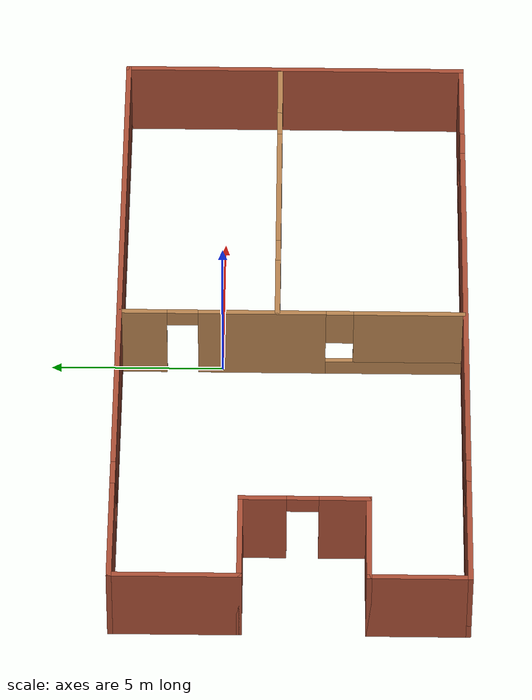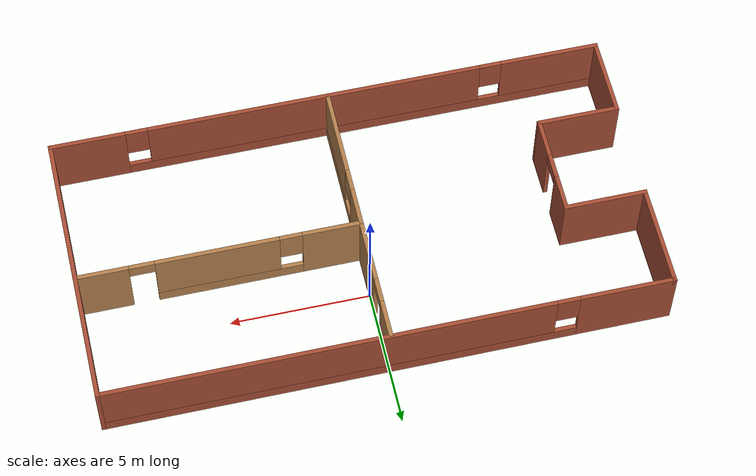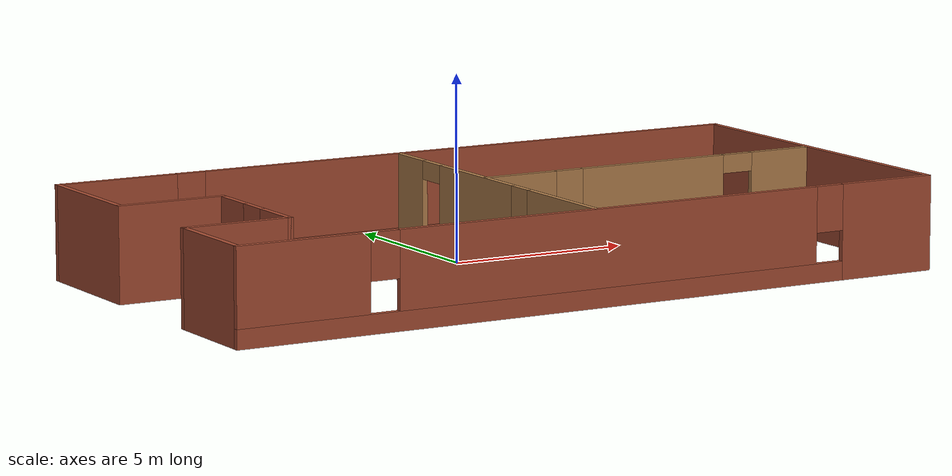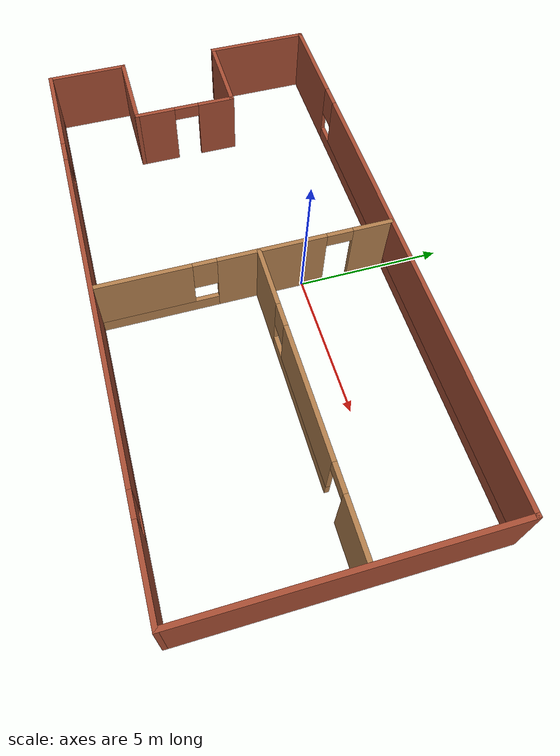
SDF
<?xml version='1.0'?>
<sdf version='1.6'>
  <model name='Building'>
    <pose frame=''>0 -2 0 0 -0 0</pose>
    <link name='Wall_40'>
      <pose frame=''>-0 5 0 0 -0 0</pose>
      <visual name='Wall_40_Visual_0'>
        <pose frame=''>-8.36862 0 1.25 0 -0 0</pose>
        <geometry>
          <box>
            <size>3.41276 0.15 2.5</size>
          </box>
        </geometry>
        <material>
          <script>
            <uri>file://media/materials/scripts/gazebo.material</uri>
            <name>Gazebo/Bricks</name>
          </script>
          <ambient>1 1 1 1</ambient>
        </material>
        <meta>
          <layer>0</layer>
        </meta>
      </visual>
      <collision name='Wall_40_Collision_0'>
        <geometry>
          <box>
            <size>3.41276 0.15 2.5</size>
          </box>
        </geometry>
        <pose frame=''>-8.36862 0 1.25 0 -0 0</pose>
      </collision>
      <visual name='Wall_40_Visual_1'>
        <pose frame=''>1.70638 0 0.25 0 -0 0</pose>
        <geometry>
          <box>
            <size>16.7372 0.15 0.5</size>
          </box>
        </geometry>
        <material>
          <script>
            <uri>file://media/materials/scripts/gazebo.material</uri>
            <name>Gazebo/Bricks</name>
          </script>
          <ambient>1 1 1 1</ambient>
        </material>
        <meta>
          <layer>0</layer>
        </meta>
      </visual>
      <collision name='Wall_40_Collision_1'>
        <geometry>
          <box>
            <size>16.7372 0.15 0.5</size>
          </box>
        </geometry>
        <pose frame=''>1.70638 0 0.25 0 -0 0</pose>
      </collision>
      <visual name='Wall_40_Visual_2'>
        <pose frame=''>2.10638 0 1.5 0 -0 0</pose>
        <geometry>
          <box>
            <size>15.9372 0.15 2</size>
          </box>
        </geometry>
        <material>
          <script>
            <uri>file://media/materials/scripts/gazebo.material</uri>
            <name>Gazebo/Bricks</name>
          </script>
          <ambient>1 1 1 1</ambient>
        </material>
        <meta>
          <layer>0</layer>
        </meta>
      </visual>
      <collision name='Wall_40_Collision_2'>
        <geometry>
          <box>
            <size>15.9372 0.15 2</size>
          </box>
        </geometry>
        <pose frame=''>2.10638 0 1.5 0 -0 0</pose>
      </collision>
      <visual name='Wall_40_Visual_3'>
        <pose frame=''>-6.26225 0 1.9 0 -0 0</pose>
        <geometry>
          <box>
            <size>0.8 0.15 1.2</size>
          </box>
        </geometry>
        <material>
          <script>
            <uri>file://media/materials/scripts/gazebo.material</uri>
            <name>Gazebo/Bricks</name>
          </script>
          <ambient>1 1 1 1</ambient>
        </material>
        <meta>
          <layer>0</layer>
        </meta>
      </visual>
      <collision name='Wall_40_Collision_3'>
        <geometry>
          <box>
            <size>0.8 0.15 1.2</size>
          </box>
        </geometry>
        <pose frame=''>-6.26225 0 1.9 0 -0 0</pose>
      </collision>
    </link>
    <link name='Wall_42'>
      <pose frame=''>-0 -5 0 0 -0 3.14159</pose>
      <visual name='Wall_42_Visual_0'>
        <pose frame=''>-8.69391 0 1.25 0 -0 0</pose>
        <geometry>
          <box>
            <size>2.76218 0.15 2.5</size>
          </box>
        </geometry>
        <material>
          <script>
            <uri>file://media/materials/scripts/gazebo.material</uri>
            <name>Gazebo/Bricks</name>
          </script>
          <ambient>1 1 1 1</ambient>
        </material>
        <meta>
          <layer>0</layer>
        </meta>
      </visual>
      <collision name='Wall_42_Collision_0'>
        <geometry>
          <box>
            <size>2.76218 0.15 2.5</size>
          </box>
        </geometry>
        <pose frame=''>-8.69391 0 1.25 0 -0 0</pose>
      </collision>
      <visual name='Wall_42_Visual_1'>
        <pose frame=''>1.38109 0 0.25 0 -0 0</pose>
        <geometry>
          <box>
            <size>17.3878 0.15 0.5</size>
          </box>
        </geometry>
        <material>
          <script>
            <uri>file://media/materials/scripts/gazebo.material</uri>
            <name>Gazebo/Bricks</name>
          </script>
          <ambient>1 1 1 1</ambient>
        </material>
        <meta>
          <layer>0</layer>
        </meta>
      </visual>
      <collision name='Wall_42_Collision_1'>
        <geometry>
          <box>
            <size>17.3878 0.15 0.5</size>
          </box>
        </geometry>
        <pose frame=''>1.38109 0 0.25 0 -0 0</pose>
      </collision>
      <visual name='Wall_42_Visual_2'>
        <pose frame=''>-0.427577 0 1.5 0 -0 0</pose>
        <geometry>
          <box>
            <size>12.1705 0.15 2</size>
          </box>
        </geometry>
        <material>
          <script>
            <uri>file://media/materials/scripts/gazebo.material</uri>
            <name>Gazebo/Bricks</name>
          </script>
          <ambient>1 1 1 1</ambient>
        </material>
        <meta>
          <layer>0</layer>
        </meta>
      </visual>
      <collision name='Wall_42_Collision_2'>
        <geometry>
          <box>
            <size>12.1705 0.15 2</size>
          </box>
        </geometry>
        <pose frame=''>-0.427577 0 1.5 0 -0 0</pose>
      </collision>
      <visual name='Wall_42_Visual_3'>
        <pose frame=''>8.26633 0 1.5 0 -0 0</pose>
        <geometry>
          <box>
            <size>3.61734 0.15 2</size>
          </box>
        </geometry>
        <material>
          <script>
            <uri>file://media/materials/scripts/gazebo.material</uri>
            <name>Gazebo/Bricks</name>
          </script>
          <ambient>1 1 1 1</ambient>
        </material>
        <meta>
          <layer>0</layer>
        </meta>
      </visual>
      <collision name='Wall_42_Collision_3'>
        <geometry>
          <box>
            <size>3.61734 0.15 2</size>
          </box>
        </geometry>
        <pose frame=''>8.26633 0 1.5 0 -0 0</pose>
      </collision>
      <visual name='Wall_42_Visual_4'>
        <pose frame=''>-6.91282 0 1.9 0 -0 0</pose>
        <geometry>
          <box>
            <size>0.8 0.15 1.2</size>
          </box>
        </geometry>
        <material>
          <script>
            <uri>file://media/materials/scripts/gazebo.material</uri>
            <name>Gazebo/Bricks</name>
          </script>
          <ambient>1 1 1 1</ambient>
        </material>
        <meta>
          <layer>0</layer>
        </meta>
      </visual>
      <collision name='Wall_42_Collision_4'>
        <geometry>
          <box>
            <size>0.8 0.15 1.2</size>
          </box>
        </geometry>
        <pose frame=''>-6.91282 0 1.9 0 -0 0</pose>
      </collision>
      <visual name='Wall_42_Visual_5'>
        <pose frame=''>6.05766 0 1.9 0 -0 0</pose>
        <geometry>
          <box>
            <size>0.8 0.15 1.2</size>
          </box>
        </geometry>
        <material>
          <script>
            <uri>file://media/materials/scripts/gazebo.material</uri>
            <name>Gazebo/Bricks</name>
          </script>
          <ambient>1 1 1 1</ambient>
        </material>
        <meta>
          <layer>0</layer>
        </meta>
      </visual>
      <collision name='Wall_42_Collision_5'>
        <geometry>
          <box>
            <size>0.8 0.15 1.2</size>
          </box>
        </geometry>
        <pose frame=''>6.05766 0 1.9 0 -0 0</pose>
      </collision>
    </link>
    <link name='Wall_44'>
      <collision name='Wall_44_Collision'>
        <geometry>
          <box>
            <size>10.15 0.15 2.5</size>
          </box>
        </geometry>
        <pose frame=''>0 0 1.25 0 -0 0</pose>
      </collision>
      <visual name='Wall_44_Visual'>
        <pose frame=''>0 0 1.25 0 -0 0</pose>
        <geometry>
          <box>
            <size>10.15 0.15 2.5</size>
          </box>
        </geometry>
        <material>
          <script>
            <uri>file://media/materials/scripts/gazebo.material</uri>
            <name>Gazebo/Bricks</name>
          </script>
          <ambient>1 1 1 1</ambient>
        </material>
        <meta>
          <layer>0</layer>
        </meta>
      </visual>
      <pose frame=''>10 0 0 0 -0 -1.5708</pose>
    </link>
    <link name='Wall_46'>
      <collision name='Wall_46_Collision'>
        <geometry>
          <box>
            <size>3.75 0.15 2.5</size>
          </box>
        </geometry>
        <pose frame=''>0 0 1.25 0 -0 0</pose>
      </collision>
      <visual name='Wall_46_Visual'>
        <pose frame=''>0 0 1.25 0 -0 0</pose>
        <geometry>
          <box>
            <size>3.75 0.15 2.5</size>
          </box>
        </geometry>
        <material>
          <script>
            <uri>file://media/materials/scripts/gazebo.material</uri>
            <name>Gazebo/Bricks</name>
          </script>
          <ambient>1 1 1 1</ambient>
        </material>
        <meta>
          <layer>0</layer>
        </meta>
      </visual>
      <pose frame=''>-10 3.2 0 0 -0 -1.5708</pose>
    </link>
    <link name='Wall_47'>
      <collision name='Wall_47_Collision'>
        <geometry>
          <box>
            <size>3 0.15 2.5</size>
          </box>
        </geometry>
        <pose frame=''>0 0 1.25 0 -0 0</pose>
      </collision>
      <visual name='Wall_47_Visual'>
        <pose frame=''>0 0 1.25 0 -0 0</pose>
        <geometry>
          <box>
            <size>3 0.15 2.5</size>
          </box>
        </geometry>
        <material>
          <script>
            <uri>file://media/materials/scripts/gazebo.material</uri>
            <name>Gazebo/Bricks</name>
          </script>
          <ambient>1 1 1 1</ambient>
        </material>
        <meta>
          <layer>0</layer>
        </meta>
      </visual>
      <pose frame=''>-8.575 1.4 0 0 -0 0</pose>
    </link>
    <link name='Wall_48'>
      <pose frame=''>-7.15 -0.4 0 0 -0 -1.5708</pose>
      <visual name='Wall_48_Visual_0'>
        <pose frame=''>-1.18962 0 1.25 0 -0 0</pose>
        <geometry>
          <box>
            <size>1.37075 0.15 2.5</size>
          </box>
        </geometry>
        <material>
          <script>
            <uri>file://media/materials/scripts/gazebo.material</uri>
            <name>Gazebo/Bricks</name>
          </script>
          <ambient>1 1 1 1</ambient>
        </material>
        <meta>
          <layer>0</layer>
        </meta>
      </visual>
      <collision name='Wall_48_Collision_0'>
        <geometry>
          <box>
            <size>1.37075 0.15 2.5</size>
          </box>
        </geometry>
        <pose frame=''>-1.18962 0 1.25 0 -0 0</pose>
      </collision>
      <visual name='Wall_48_Visual_1'>
        <pose frame=''>1.13538 0 1.25 0 -0 0</pose>
        <geometry>
          <box>
            <size>1.47925 0.15 2.5</size>
          </box>
        </geometry>
        <material>
          <script>
            <uri>file://media/materials/scripts/gazebo.material</uri>
            <name>Gazebo/Bricks</name>
          </script>
          <ambient>1 1 1 1</ambient>
        </material>
        <meta>
          <layer>0</layer>
        </meta>
      </visual>
      <collision name='Wall_48_Collision_1'>
        <geometry>
          <box>
            <size>1.47925 0.15 2.5</size>
          </box>
        </geometry>
        <pose frame=''>1.13538 0 1.25 0 -0 0</pose>
      </collision>
      <visual name='Wall_48_Visual_2'>
        <pose frame=''>-0.05425 0 2.25 0 -0 0</pose>
        <geometry>
          <box>
            <size>0.9 0.15 0.5</size>
          </box>
        </geometry>
        <material>
          <script>
            <uri>file://media/materials/scripts/gazebo.material</uri>
            <name>Gazebo/Bricks</name>
          </script>
          <ambient>1 1 1 1</ambient>
        </material>
        <meta>
          <layer>0</layer>
        </meta>
      </visual>
      <collision name='Wall_48_Collision_2'>
        <geometry>
          <box>
            <size>0.9 0.15 0.5</size>
          </box>
        </geometry>
        <pose frame=''>-0.05425 0 2.25 0 -0 0</pose>
      </collision>
    </link>
    <link name='Wall_49'>
      <collision name='Wall_49_Collision'>
        <geometry>
          <box>
            <size>3 0.15 2.5</size>
          </box>
        </geometry>
        <pose frame=''>0 0 1.25 0 -0 0</pose>
      </collision>
      <visual name='Wall_49_Visual'>
        <pose frame=''>0 0 1.25 0 -0 0</pose>
        <geometry>
          <box>
            <size>3 0.15 2.5</size>
          </box>
        </geometry>
        <material>
          <script>
            <uri>file://media/materials/scripts/gazebo.material</uri>
            <name>Gazebo/Bricks</name>
          </script>
          <ambient>1 1 1 1</ambient>
        </material>
        <meta>
          <layer>0</layer>
        </meta>
      </visual>
      <pose frame=''>-8.575 -2.2 0 0 -0 3.14159</pose>
    </link>
    <link name='Wall_50'>
      <collision name='Wall_50_Collision'>
        <geometry>
          <box>
            <size>2.807 0.15 2.5</size>
          </box>
        </geometry>
        <pose frame=''>0 0 1.25 0 -0 0</pose>
      </collision>
      <visual name='Wall_50_Visual'>
        <pose frame=''>0 0 1.25 0 -0 0</pose>
        <geometry>
          <box>
            <size>2.807 0.15 2.5</size>
          </box>
        </geometry>
        <material>
          <script>
            <uri>file://media/materials/scripts/gazebo.material</uri>
            <name>Gazebo/Bricks</name>
          </script>
          <ambient>1 1 1 1</ambient>
        </material>
        <meta>
          <layer>0</layer>
        </meta>
      </visual>
      <pose frame=''>-10 -3.5285 0 0 -0 -1.5708</pose>
    </link>
    <link name='Wall_54'>
      <pose frame=''>-0.042962 0.007458 0 0 -0 -1.5708</pose>
      <visual name='Wall_54_Visual_0'>
        <pose frame=''>-4.3078 0 1.25 0 -0 0</pose>
        <geometry>
          <box>
            <size>1.3844 0.15 2.5</size>
          </box>
        </geometry>
        <material>
          <script>
            <uri>file://media/materials/scripts/gazebo.material</uri>
            <name>Gazebo/Wood</name>
          </script>
          <ambient>1 1 1 1</ambient>
        </material>
        <meta>
          <layer>0</layer>
        </meta>
      </visual>
      <collision name='Wall_54_Collision_0'>
        <geometry>
          <box>
            <size>1.3844 0.15 2.5</size>
          </box>
        </geometry>
        <pose frame=''>-4.3078 0 1.25 0 -0 0</pose>
      </collision>
      <visual name='Wall_54_Visual_1'>
        <pose frame=''>-0.86974 0 1.25 0 -0 0</pose>
        <geometry>
          <box>
            <size>3.69171 0.15 2.5</size>
          </box>
        </geometry>
        <material>
          <script>
            <uri>file://media/materials/scripts/gazebo.material</uri>
            <name>Gazebo/Wood</name>
          </script>
          <ambient>1 1 1 1</ambient>
        </material>
        <meta>
          <layer>0</layer>
        </meta>
      </visual>
      <collision name='Wall_54_Collision_1'>
        <geometry>
          <box>
            <size>3.69171 0.15 2.5</size>
          </box>
        </geometry>
        <pose frame=''>-0.86974 0 1.25 0 -0 0</pose>
      </collision>
      <visual name='Wall_54_Visual_2'>
        <pose frame=''>2.98806 0 0.25 0 -0 0</pose>
        <geometry>
          <box>
            <size>4.02388 0.15 0.5</size>
          </box>
        </geometry>
        <material>
          <script>
            <uri>file://media/materials/scripts/gazebo.material</uri>
            <name>Gazebo/Wood</name>
          </script>
          <ambient>1 1 1 1</ambient>
        </material>
        <meta>
          <layer>0</layer>
        </meta>
      </visual>
      <collision name='Wall_54_Collision_2'>
        <geometry>
          <box>
            <size>4.02388 0.15 0.5</size>
          </box>
        </geometry>
        <pose frame=''>2.98806 0 0.25 0 -0 0</pose>
      </collision>
      <visual name='Wall_54_Visual_3'>
        <pose frame=''>3.38806 0 1.5 0 -0 0</pose>
        <geometry>
          <box>
            <size>3.22388 0.15 2</size>
          </box>
        </geometry>
        <material>
          <script>
            <uri>file://media/materials/scripts/gazebo.material</uri>
            <name>Gazebo/Wood</name>
          </script>
          <ambient>1 1 1 1</ambient>
        </material>
        <meta>
          <layer>0</layer>
        </meta>
      </visual>
      <collision name='Wall_54_Collision_3'>
        <geometry>
          <box>
            <size>3.22388 0.15 2</size>
          </box>
        </geometry>
        <pose frame=''>3.38806 0 1.5 0 -0 0</pose>
      </collision>
      <visual name='Wall_54_Visual_4'>
        <pose frame=''>1.37612 0 1.9 0 -0 0</pose>
        <geometry>
          <box>
            <size>0.8 0.15 1.2</size>
          </box>
        </geometry>
        <material>
          <script>
            <uri>file://media/materials/scripts/gazebo.material</uri>
            <name>Gazebo/Wood</name>
          </script>
          <ambient>1 1 1 1</ambient>
        </material>
        <meta>
          <layer>0</layer>
        </meta>
      </visual>
      <collision name='Wall_54_Collision_4'>
        <geometry>
          <box>
            <size>0.8 0.15 1.2</size>
          </box>
        </geometry>
        <pose frame=''>1.37612 0 1.9 0 -0 0</pose>
      </collision>
      <visual name='Wall_54_Visual_5'>
        <pose frame=''>-3.1656 0 2.25 0 -0 0</pose>
        <geometry>
          <box>
            <size>0.9 0.15 0.5</size>
          </box>
        </geometry>
        <material>
          <script>
            <uri>file://media/materials/scripts/gazebo.material</uri>
            <name>Gazebo/Wood</name>
          </script>
          <ambient>1 1 1 1</ambient>
        </material>
        <meta>
          <layer>0</layer>
        </meta>
      </visual>
      <collision name='Wall_54_Collision_5'>
        <geometry>
          <box>
            <size>0.9 0.15 0.5</size>
          </box>
        </geometry>
        <pose frame=''>-3.1656 0 2.25 0 -0 0</pose>
      </collision>
    </link>
    <link name='Wall_56'>
      <pose frame=''>4.92295 0.43166 0 0 -0 0</pose>
      <visual name='Wall_56_Visual_0'>
        <pose frame=''>-3.93501 0 1.25 0 -0 0</pose>
        <geometry>
          <box>
            <size>2.12998 0.15 2.5</size>
          </box>
        </geometry>
        <material>
          <script>
            <uri>file://media/materials/scripts/gazebo.material</uri>
            <name>Gazebo/Wood</name>
          </script>
          <ambient>1 1 1 1</ambient>
        </material>
        <meta>
          <layer>0</layer>
        </meta>
      </visual>
      <collision name='Wall_56_Collision_0'>
        <geometry>
          <box>
            <size>2.12998 0.15 2.5</size>
          </box>
        </geometry>
        <pose frame=''>-3.93501 0 1.25 0 -0 0</pose>
      </collision>
      <visual name='Wall_56_Visual_1'>
        <pose frame=''>4.10864 0 1.25 0 -0 0</pose>
        <geometry>
          <box>
            <size>1.78273 0.15 2.5</size>
          </box>
        </geometry>
        <material>
          <script>
            <uri>file://media/materials/scripts/gazebo.material</uri>
            <name>Gazebo/Wood</name>
          </script>
          <ambient>1 1 1 1</ambient>
        </material>
        <meta>
          <layer>0</layer>
        </meta>
      </visual>
      <collision name='Wall_56_Collision_1'>
        <geometry>
          <box>
            <size>1.78273 0.15 2.5</size>
          </box>
        </geometry>
        <pose frame=''>4.10864 0 1.25 0 -0 0</pose>
      </collision>
      <visual name='Wall_56_Visual_2'>
        <pose frame=''>-0.276373 0 0.25 0 -0 0</pose>
        <geometry>
          <box>
            <size>5.18729 0.15 0.5</size>
          </box>
        </geometry>
        <material>
          <script>
            <uri>file://media/materials/scripts/gazebo.material</uri>
            <name>Gazebo/Wood</name>
          </script>
          <ambient>1 1 1 1</ambient>
        </material>
        <meta>
          <layer>0</layer>
        </meta>
      </visual>
      <collision name='Wall_56_Collision_2'>
        <geometry>
          <box>
            <size>5.18729 0.15 0.5</size>
          </box>
        </geometry>
        <pose frame=''>-0.276373 0 0.25 0 -0 0</pose>
      </collision>
      <visual name='Wall_56_Visual_3'>
        <pose frame=''>0.123627 0 1.5 0 -0 0</pose>
        <geometry>
          <box>
            <size>4.38729 0.15 2</size>
          </box>
        </geometry>
        <material>
          <script>
            <uri>file://media/materials/scripts/gazebo.material</uri>
            <name>Gazebo/Wood</name>
          </script>
          <ambient>1 1 1 1</ambient>
        </material>
        <meta>
          <layer>0</layer>
        </meta>
      </visual>
      <collision name='Wall_56_Collision_3'>
        <geometry>
          <box>
            <size>4.38729 0.15 2</size>
          </box>
        </geometry>
        <pose frame=''>0.123627 0 1.5 0 -0 0</pose>
      </collision>
      <visual name='Wall_56_Visual_4'>
        <pose frame=''>-2.47002 0 1.9 0 -0 0</pose>
        <geometry>
          <box>
            <size>0.8 0.15 1.2</size>
          </box>
        </geometry>
        <material>
          <script>
            <uri>file://media/materials/scripts/gazebo.material</uri>
            <name>Gazebo/Wood</name>
          </script>
          <ambient>1 1 1 1</ambient>
        </material>
        <meta>
          <layer>0</layer>
        </meta>
      </visual>
      <collision name='Wall_56_Collision_4'>
        <geometry>
          <box>
            <size>0.8 0.15 1.2</size>
          </box>
        </geometry>
        <pose frame=''>-2.47002 0 1.9 0 -0 0</pose>
      </collision>
      <visual name='Wall_56_Visual_5'>
        <pose frame=''>2.76727 0 2.25 0 -0 0</pose>
        <geometry>
          <box>
            <size>0.9 0.15 0.5</size>
          </box>
        </geometry>
        <material>
          <script>
            <uri>file://media/materials/scripts/gazebo.material</uri>
            <name>Gazebo/Wood</name>
          </script>
          <ambient>1 1 1 1</ambient>
        </material>
        <meta>
          <layer>0</layer>
        </meta>
      </visual>
      <collision name='Wall_56_Collision_5'>
        <geometry>
          <box>
            <size>0.9 0.15 0.5</size>
          </box>
        </geometry>
        <pose frame=''>2.76727 0 2.25 0 -0 0</pose>
      </collision>
    </link>
    <static>1</static>
  </model>
</sdf>
